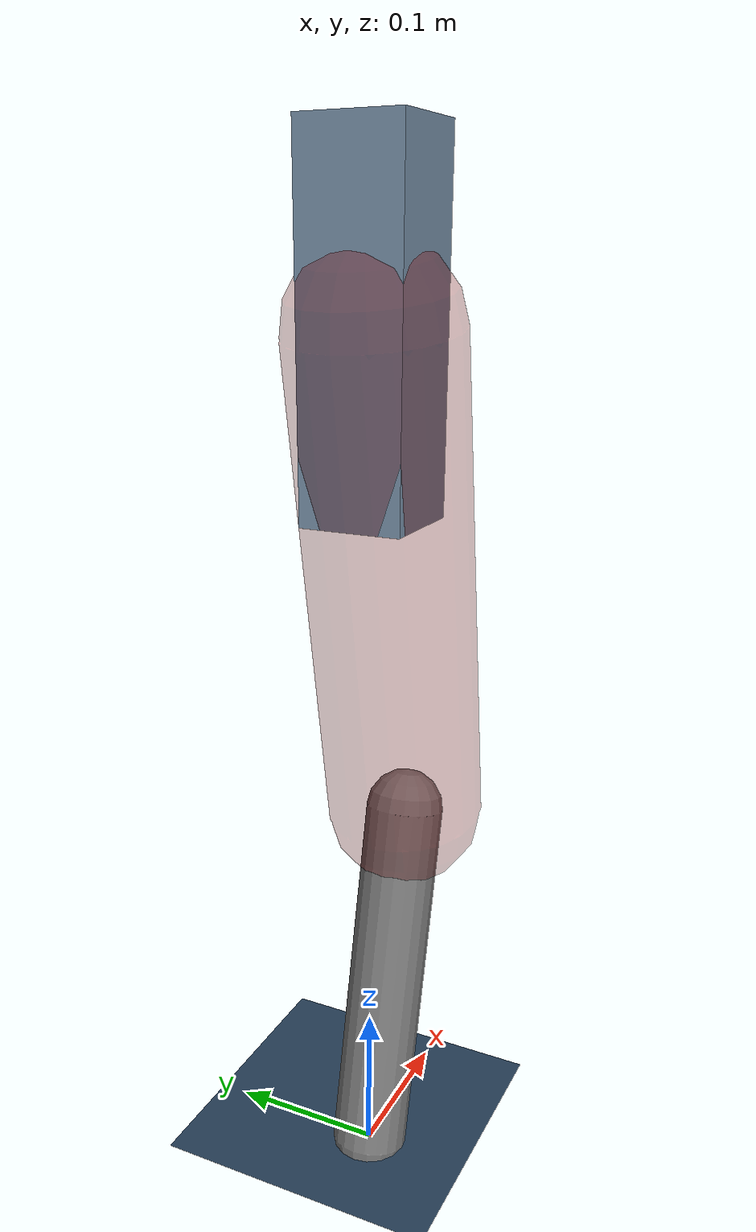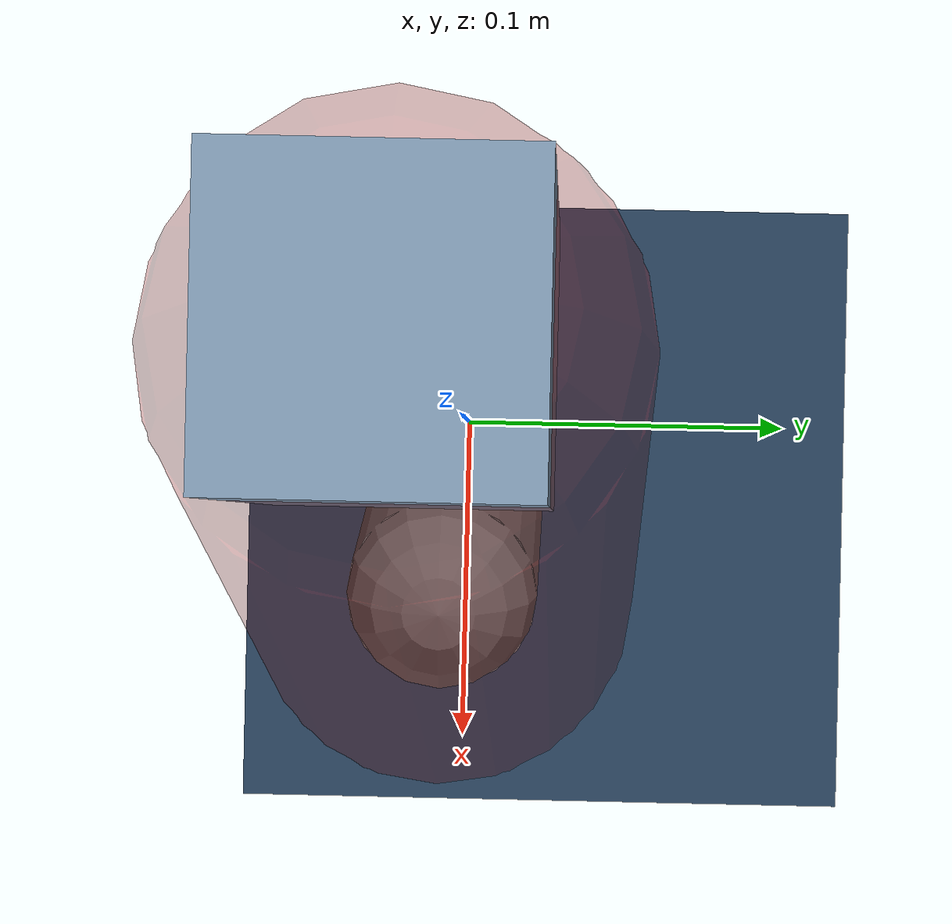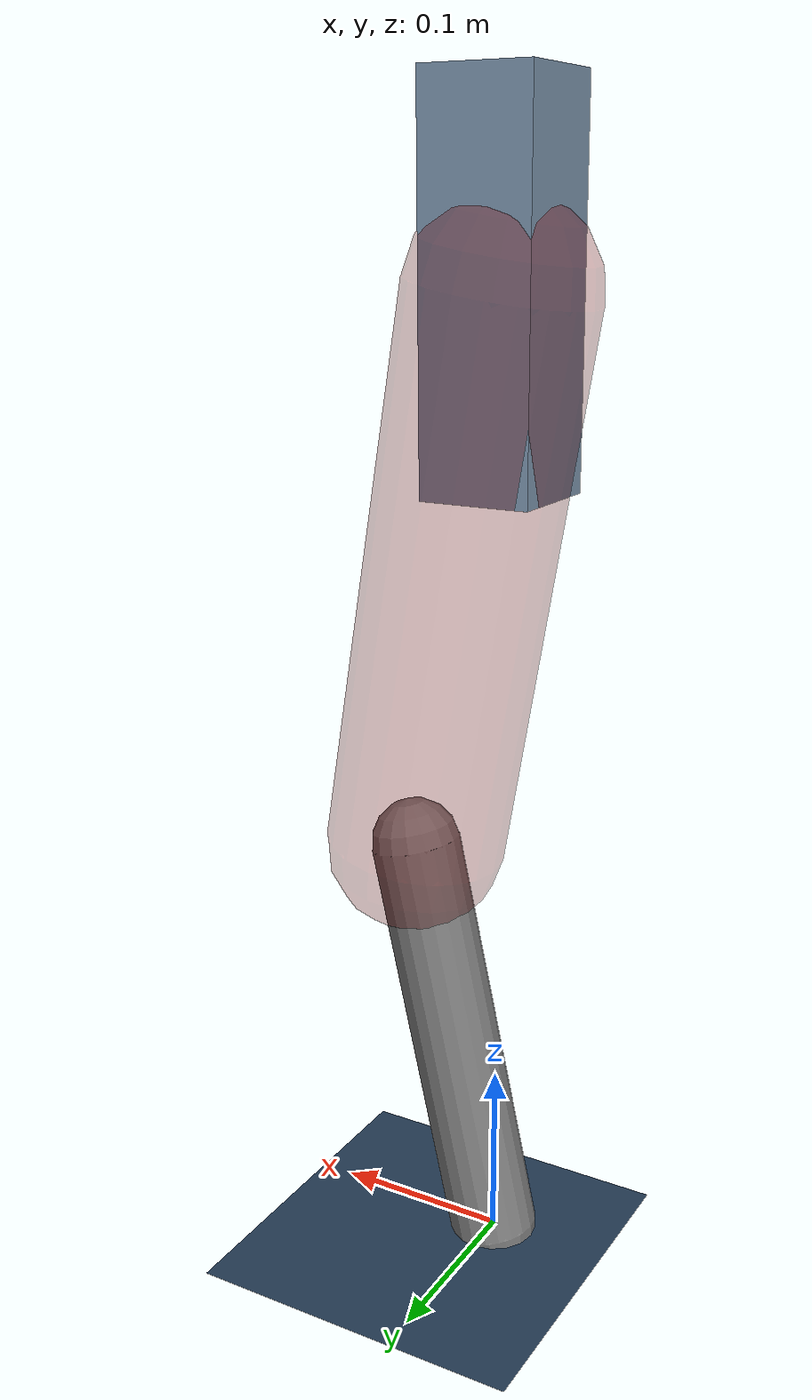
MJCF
<mujoco model="Hopper2D">
	<compiler inertiafromgeom="true" angle="radian" />
	<option timestep="0.001" integrator="implicit" cone="elliptic" solver="Newton" tolerance="1e-10" />

	<default>
		<geom contype="1" conaffinity="1" condim="3" friction="2 0.005 0.0001" solref="0.005 1" />
		<joint limited="true" damping="0.1" />
	</default>

	<asset>
		<texture name="skybox" type="skybox" builtin="gradient" rgb1=".4 .6 .8" rgb2="0 0 0" width="800" height="800" />
		<texture name="grid" type="2d" builtin="checker" rgb1=".1 .2 .3" rgb2=".2 .3 .4" width="300" height="300" mark="edge" markrgb=".2 .3 .4" />
		<material name="ground" texture="grid" texrepeat="1 1" texuniform="true" reflectance="0.1" />
		<material name="leg" rgba="0.5 0.6 0.7 1" />
	</asset>

	<worldbody>

		<geom name="floor" type="plane" size="5 5 0.25" material="ground" />

		<light directional="false" diffuse="0.8 0.8 0.8" specular="0.3 0.3 0.3" pos="0 0 2" dir="0 0 -1" />
		<light mode="targetbodycom" target="base" directional="false" diffuse="0.8 0.8 0.8" specular="0.3 0.3 0.3" pos="0 0 2" dir="0 0 -1" />

		<camera name="fixed" pos="0 -2 1" xyaxes="1 0 0 0 0 1" />
		<camera name="tracking" mode="trackcom" pos="0 -3 1" />

		<body name="root" pos="0 0 0.5319969352432696">
			<joint name="slide_x" type="slide" axis="1 0 0" range="-100 100" />
			<joint name="slide_z" type="slide" axis="0 0 1" range="0 10" />

			<body name="base" pos="0 0 0">
				<geom name="torso" type="box" size="0.03 0.03 0.1" mass="3.113" material="leg" />

				<body name="link1" pos="0 0 0" euler="0 1.3997715497668937 0">
					<joint type="hinge" axis="0 -1 0" pos="0 0 0" name="hinge1" limited="true" range="-3.14 3.14" stiffness="0" damping="0.1" />
					<geom name="thigh" type="capsule" fromto="0 0 0 0.30233982261602943 0 0" size="0.05" rgba="0.5 0 0 0.3" mass="0.9950515033248825" />

					<body name="link2" pos="0.30233982261602943 0 0" euler="0 0.3874159146296827 0">
						<joint type="hinge" axis="0 -1 0" pos="0 0 0" name="hinge2" limited="true" range="-3.14 3.14" stiffness="0" damping="0.1" />
						<geom name="shank" type="capsule" fromto="0 0 0 0.23965711262724027 0 0" size="0.025" mass="0.43399140136451625" />

					</body>
				</body>
			</body>
		</body>
	</worldbody>

	<actuator>
		<motor name="torque1" joint="hinge1" ctrlrange="-103.354796165621 103.354796165621" ctrllimited="true" gear="1" />
		<motor name="torque2" joint="hinge2" ctrlrange="-89.79152719225405 89.79152719225405" ctrllimited="true" gear="1" />
	</actuator>
</mujoco>
